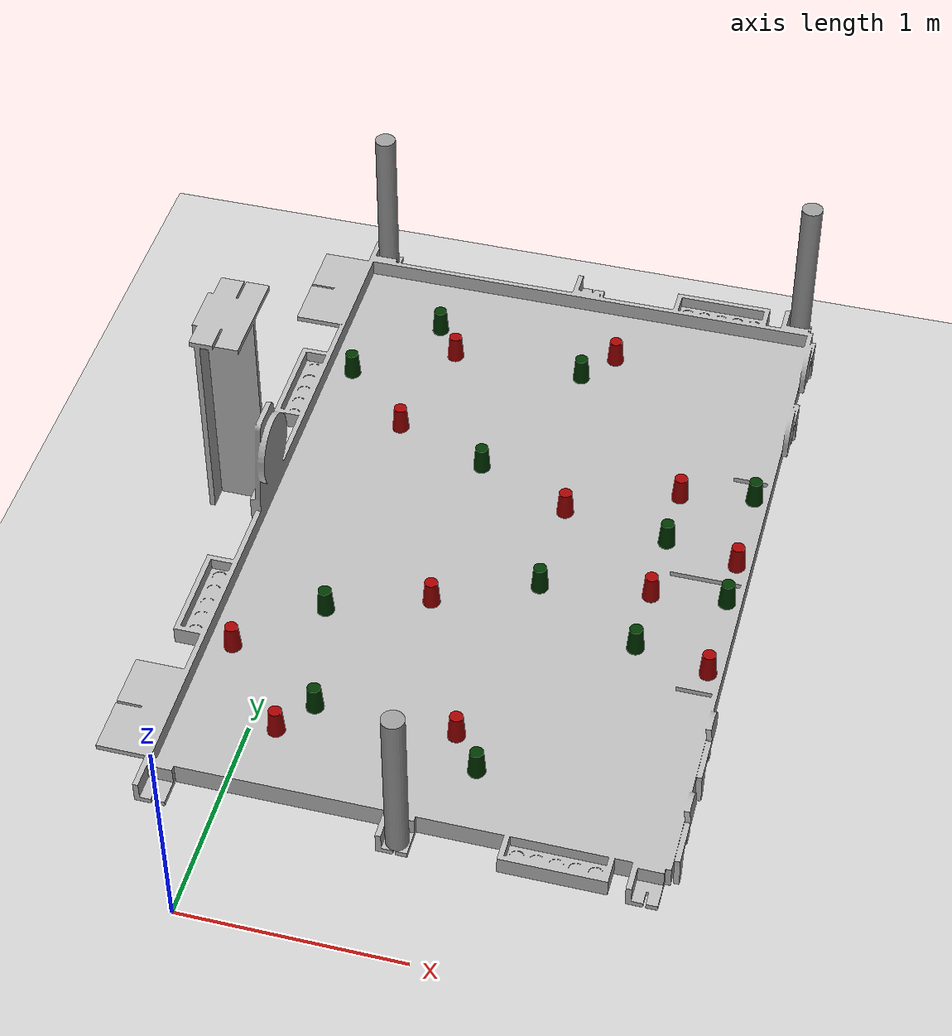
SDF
<sdf version="1.6">
 <world name="default">
  <light name="sun" type="directional">
   <pose>0 0 10 0 -0 0</pose>
   <diffuse>0.8 0.8 0.8 1</diffuse>
   <specular>0.2 0.2 0.2 1</specular>
   <attenuation>
    <range>1000</range>
    <constant>0.9</constant>
    <linear>0.01</linear>
    <quadratic>0.001</quadratic>
   </attenuation>
   <direction>-0.5 0.1 -0.9</direction>
  </light>
  <model name="ground_plane">
   <static>1</static>
   <link name="link">
    <collision name="collision">
     <geometry><plane><normal>0 0 1</normal><size>100 100</size></plane></geometry>
     <surface><friction><ode><mu>100</mu><mu2>50</mu2></ode></friction></surface>
    </collision>
    <visual name="visual">
     <cast_shadows>0</cast_shadows>
     <geometry><plane><normal>0 0 1</normal><size>100 100</size></plane></geometry>
     <material>
      <script><uri>file://media/materials/scripts/gazebo.material</uri><name>Gazebo/Grey</name></script>
     </material>
    </visual>
   </link>
  </model>
  <gravity>0 0 -9.8</gravity>
  <magnetic_field>6e-06 2.3e-05 -4.2e-05</magnetic_field>
  <atmosphere type="adiabatic"/>
  <physics name="default_physics" default="0" type="ode">
   <max_step_size>0.001</max_step_size>
   <real_time_factor>1</real_time_factor>
   <real_time_update_rate>1000</real_time_update_rate>
  </physics>
  <scene><ambient>0.4 0.4 0.4 1</ambient><background>0.7 0.7 0.7 1</background><shadows>1</shadows></scene>
  <audio><device>default</device></audio>
  <spherical_coordinates>
   <surface_model>EARTH_WGS84</surface_model>
   <latitude_deg>0</latitude_deg>
   <longitude_deg>0</longitude_deg>
   <elevation>0</elevation>
   <heading_deg>0</heading_deg>
  </spherical_coordinates>
  <model name="table_eurobot_2020">
   <pose>1 1.5 0 0 -0 1.5708</pose>
   <static>1</static>
   <link name="table">
    <inertial>
     <mass>15</mass>
     <inertia><ixx>0.083</ixx><ixy>0</ixy><ixz>0</ixz><iyy>0.083</iyy><iyz>0</iyz><izz>0.083</izz></inertia>
    </inertial>
    <collision name="table_collision">
     <pose>-1.5 1 0.9 1.57 -0 0</pose>
     <geometry><mesh><uri>model://table_eurobot_2020/meshes/table.dae</uri><scale>1 1 1</scale></mesh></geometry>
    </collision>
    <visual name="table_visual">
     <pose>-1.5 1 0.9 1.57 -0 0</pose>
     <geometry>
      <mesh><uri>model://table_eurobot_2020/meshes/table_tex2.dae</uri><scale>1 1 1</scale></mesh>
     </geometry>
    </visual>
    <collision name="table_stand_collision">
     <pose>0 0 0.45 0 -0 0</pose>
     <geometry><box><size>1 1 0.947</size></box></geometry>
    </collision>
    <visual name="table_stand_visual">
     <pose>0 0 0.45 0 -0 0</pose>
     <geometry><box><size>1 1 0.924</size></box></geometry>
    </visual>
   </link>
  </model>
  <light name="user_point_light_0" type="point">
   <pose>1.01102 1.44939 1 0 -0 0</pose>
   <diffuse>0.5 0.5 0.5 1</diffuse>
   <specular>0.1 0.1 0.1 1</specular>
   <attenuation>
    <range>20</range>
    <constant>0.5</constant>
    <linear>0.01</linear>
    <quadratic>0.001</quadratic>
   </attenuation>
   <cast_shadows>0</cast_shadows>
   <direction>0 0 -1</direction>
  </light>
  <model name="balise_green_1">
   <link name="balise">
    <inertial>
     <mass>0.0316</mass>
     <inertia><ixx>0.083</ixx><ixy>0</ixy><ixz>0</ixz><iyy>0.083</iyy><iyz>0</iyz><izz>0.083</izz></inertia>
    </inertial>
    <visual name="balise_visual">
     <pose>0 0 0.06 0 -0 0</pose>
     <geometry><mesh><uri>model://balise_green/meshes/balise_green.dae</uri><scale>1 1 1</scale></mesh></geometry>
    </visual>
    <collision name="balise_collision">
     <pose>0 0 0.06 0 -0 0</pose>
     <geometry>
      <mesh><uri>/home/frank/.gazebo/models/balise_green/meshes/balise_green.dae</uri><scale>1 1 1</scale></mesh>
     </geometry>
     <surface>
      <friction>
       <ode><mu>1</mu><mu2>1</mu2><fdir1>0 0 0</fdir1><slip1>0</slip1><slip2>0</slip2></ode>
       <torsional>
        <coefficient>1</coefficient>
        <patch_radius>0</patch_radius>
        <surface_radius>0</surface_radius>
        <use_patch_radius>1</use_patch_radius>
        <ode><slip>0</slip></ode>
       </torsional>
      </friction>
      <bounce><restitution_coefficient>0</restitution_coefficient><threshold>1e+06</threshold></bounce>
      <contact>
       <collide_without_contact>0</collide_without_contact>
       <collide_without_contact_bitmask>1</collide_without_contact_bitmask>
       <collide_bitmask>1</collide_bitmask>
       <ode>
        <soft_cfm>0</soft_cfm>
        <soft_erp>0.2</soft_erp>
        <kp>1e+13</kp>
        <kd>1</kd>
        <max_vel>0.01</max_vel>
        <min_depth>0</min_depth>
       </ode>
       <bullet>
        <split_impulse>1</split_impulse>
        <split_impulse_penetration_threshold>-0.01</split_impulse_penetration_threshold>
        <soft_cfm>0</soft_cfm>
        <soft_erp>0.2</soft_erp>
        <kp>1e+13</kp>
        <kd>1</kd>
       </bullet>
      </contact>
     </surface>
    </collision>
   </link>
   <static>0</static>
   <pose>0.099919 2.33004 1.0396 -3.14129 0.001341 3.14159</pose>
  </model>
  <model name="balise_green_2">
   <link name="balise">
    <inertial>
     <mass>0.0316</mass>
     <inertia><ixx>0.083</ixx><ixy>0</ixy><ixz>0</ixz><iyy>0.083</iyy><iyz>0</iyz><izz>0.083</izz></inertia>
    </inertial>
    <visual name="balise_visual">
     <pose>0 0 0.06 0 -0 0</pose>
     <geometry><mesh><uri>model://balise_green/meshes/balise_green.dae</uri><scale>1 1 1</scale></mesh></geometry>
    </visual>
    <collision name="balise_collision">
     <pose>0 0 0.06 0 -0 0</pose>
     <geometry>
      <mesh><uri>/home/frank/.gazebo/models/balise_green/meshes/balise_green.dae</uri><scale>1 1 1</scale></mesh>
     </geometry>
     <surface>
      <friction>
       <ode><mu>1</mu><mu2>1</mu2><fdir1>0 0 0</fdir1><slip1>0</slip1><slip2>0</slip2></ode>
       <torsional>
        <coefficient>1</coefficient>
        <patch_radius>0</patch_radius>
        <surface_radius>0</surface_radius>
        <use_patch_radius>1</use_patch_radius>
        <ode><slip>0</slip></ode>
       </torsional>
      </friction>
      <bounce><restitution_coefficient>0</restitution_coefficient><threshold>1e+06</threshold></bounce>
      <contact>
       <collide_without_contact>0</collide_without_contact>
       <collide_without_contact_bitmask>1</collide_without_contact_bitmask>
       <collide_bitmask>1</collide_bitmask>
       <ode>
        <soft_cfm>0</soft_cfm>
        <soft_erp>0.2</soft_erp>
        <kp>1e+13</kp>
        <kd>1</kd>
        <max_vel>0.01</max_vel>
        <min_depth>0</min_depth>
       </ode>
       <bullet>
        <split_impulse>1</split_impulse>
        <split_impulse_penetration_threshold>-0.01</split_impulse_penetration_threshold>
        <soft_cfm>0</soft_cfm>
        <soft_erp>0.2</soft_erp>
        <kp>1e+13</kp>
        <kd>1</kd>
       </bullet>
      </contact>
     </surface>
    </collision>
   </link>
   <static>0</static>
   <pose>0.399998 0.949986 1.03981 3.14148 0.000669 -3.14159</pose>
  </model>
  <model name="balise_green_3">
   <link name="balise">
    <inertial>
     <mass>0.0316</mass>
     <inertia><ixx>0.083</ixx><ixy>0</ixy><ixz>0</ixz><iyy>0.083</iyy><iyz>0</iyz><izz>0.083</izz></inertia>
    </inertial>
    <visual name="balise_visual">
     <pose>0 0 0.06 0 -0 0</pose>
     <geometry><mesh><uri>model://balise_green/meshes/balise_green.dae</uri><scale>1 1 1</scale></mesh></geometry>
    </visual>
    <collision name="balise_collision">
     <pose>0 0 0.06 0 -0 0</pose>
     <geometry>
      <mesh><uri>/home/frank/.gazebo/models/balise_green/meshes/balise_green.dae</uri><scale>1 1 1</scale></mesh>
     </geometry>
     <surface>
      <friction>
       <ode><mu>1</mu><mu2>1</mu2><fdir1>0 0 0</fdir1><slip1>0</slip1><slip2>0</slip2></ode>
       <torsional>
        <coefficient>1</coefficient>
        <patch_radius>0</patch_radius>
        <surface_radius>0</surface_radius>
        <use_patch_radius>1</use_patch_radius>
        <ode><slip>0</slip></ode>
       </torsional>
      </friction>
      <bounce><restitution_coefficient>0</restitution_coefficient><threshold>1e+06</threshold></bounce>
      <contact>
       <collide_without_contact>0</collide_without_contact>
       <collide_without_contact_bitmask>1</collide_without_contact_bitmask>
       <collide_bitmask>1</collide_bitmask>
       <ode>
        <soft_cfm>0</soft_cfm>
        <soft_erp>0.2</soft_erp>
        <kp>1e+13</kp>
        <kd>1</kd>
        <max_vel>0.01</max_vel>
        <min_depth>0</min_depth>
       </ode>
       <bullet>
        <split_impulse>1</split_impulse>
        <split_impulse_penetration_threshold>-0.01</split_impulse_penetration_threshold>
        <soft_cfm>0</soft_cfm>
        <soft_erp>0.2</soft_erp>
        <kp>1e+13</kp>
        <kd>1</kd>
       </bullet>
      </contact>
     </surface>
    </collision>
   </link>
   <static>0</static>
   <pose>0.400062 2.69994 1.03985 3.14104 0.000131 -3.14159</pose>
  </model>
  <model name="balise_green_4">
   <link name="balise">
    <inertial>
     <mass>0.0316</mass>
     <inertia><ixx>0.083</ixx><ixy>0</ixy><ixz>0</ixz><iyy>0.083</iyy><iyz>0</iyz><izz>0.083</izz></inertia>
    </inertial>
    <visual name="balise_visual">
     <pose>0 0 0.06 0 -0 0</pose>
     <geometry><mesh><uri>model://balise_green/meshes/balise_green.dae</uri><scale>1 1 1</scale></mesh></geometry>
    </visual>
    <collision name="balise_collision">
     <pose>0 0 0.06 0 -0 0</pose>
     <geometry>
      <mesh><uri>/home/frank/.gazebo/models/balise_green/meshes/balise_green.dae</uri><scale>1 1 1</scale></mesh>
     </geometry>
     <surface>
      <friction>
       <ode><mu>1</mu><mu2>1</mu2><fdir1>0 0 0</fdir1><slip1>0</slip1><slip2>0</slip2></ode>
       <torsional>
        <coefficient>1</coefficient>
        <patch_radius>0</patch_radius>
        <surface_radius>0</surface_radius>
        <use_patch_radius>1</use_patch_radius>
        <ode><slip>0</slip></ode>
       </torsional>
      </friction>
      <bounce><restitution_coefficient>0</restitution_coefficient><threshold>1e+06</threshold></bounce>
      <contact>
       <collide_without_contact>0</collide_without_contact>
       <collide_without_contact_bitmask>1</collide_without_contact_bitmask>
       <collide_bitmask>1</collide_bitmask>
       <ode>
        <soft_cfm>0</soft_cfm>
        <soft_erp>0.2</soft_erp>
        <kp>1e+13</kp>
        <kd>1</kd>
        <max_vel>0.01</max_vel>
        <min_depth>0</min_depth>
       </ode>
       <bullet>
        <split_impulse>1</split_impulse>
        <split_impulse_penetration_threshold>-0.01</split_impulse_penetration_threshold>
        <soft_cfm>0</soft_cfm>
        <soft_erp>0.2</soft_erp>
        <kp>1e+13</kp>
        <kd>1</kd>
       </bullet>
      </contact>
     </surface>
    </collision>
   </link>
   <static>0</static>
   <pose>0.509997 0.450009 1.03991 -3.14152 0.00069 3.14159</pose>
  </model>
  <model name="balise_green_5">
   <link name="balise">
    <inertial>
     <mass>0.0316</mass>
     <inertia><ixx>0.083</ixx><ixy>0</ixy><ixz>0</ixz><iyy>0.083</iyy><iyz>0</iyz><izz>0.083</izz></inertia>
    </inertial>
    <visual name="balise_visual">
     <pose>0 0 0.06 0 -0 0</pose>
     <geometry><mesh><uri>model://balise_green/meshes/balise_green.dae</uri><scale>1 1 1</scale></mesh></geometry>
    </visual>
    <collision name="balise_collision">
     <pose>0 0 0.06 0 -0 0</pose>
     <geometry>
      <mesh><uri>/home/frank/.gazebo/models/balise_green/meshes/balise_green.dae</uri><scale>1 1 1</scale></mesh>
     </geometry>
     <surface>
      <friction>
       <ode><mu>1</mu><mu2>1</mu2><fdir1>0 0 0</fdir1><slip1>0</slip1><slip2>0</slip2></ode>
       <torsional>
        <coefficient>1</coefficient>
        <patch_radius>0</patch_radius>
        <surface_radius>0</surface_radius>
        <use_patch_radius>1</use_patch_radius>
        <ode><slip>0</slip></ode>
       </torsional>
      </friction>
      <bounce><restitution_coefficient>0</restitution_coefficient><threshold>1e+06</threshold></bounce>
      <contact>
       <collide_without_contact>0</collide_without_contact>
       <collide_without_contact_bitmask>1</collide_without_contact_bitmask>
       <collide_bitmask>1</collide_bitmask>
       <ode>
        <soft_cfm>0</soft_cfm>
        <soft_erp>0.2</soft_erp>
        <kp>1e+13</kp>
        <kd>1</kd>
        <max_vel>0.01</max_vel>
        <min_depth>0</min_depth>
       </ode>
       <bullet>
        <split_impulse>1</split_impulse>
        <split_impulse_penetration_threshold>-0.01</split_impulse_penetration_threshold>
        <soft_cfm>0</soft_cfm>
        <soft_erp>0.2</soft_erp>
        <kp>1e+13</kp>
        <kd>1</kd>
       </bullet>
      </contact>
     </surface>
    </collision>
   </link>
   <static>0</static>
   <pose>0.800114 1.90021 1.04106 -3.13984 -0.000177 3.14159</pose>
  </model>
  <model name="balise_green_6">
   <link name="balise">
    <inertial>
     <mass>0.0316</mass>
     <inertia><ixx>0.083</ixx><ixy>0</ixy><ixz>0</ixz><iyy>0.083</iyy><iyz>0</iyz><izz>0.083</izz></inertia>
    </inertial>
    <visual name="balise_visual">
     <pose>0 0 0.06 0 -0 0</pose>
     <geometry><mesh><uri>model://balise_green/meshes/balise_green.dae</uri><scale>1 1 1</scale></mesh></geometry>
    </visual>
    <collision name="balise_collision">
     <pose>0 0 0.06 0 -0 0</pose>
     <geometry>
      <mesh><uri>/home/frank/.gazebo/models/balise_green/meshes/balise_green.dae</uri><scale>1 1 1</scale></mesh>
     </geometry>
     <surface>
      <friction>
       <ode><mu>1</mu><mu2>1</mu2><fdir1>0 0 0</fdir1><slip1>0</slip1><slip2>0</slip2></ode>
       <torsional>
        <coefficient>1</coefficient>
        <patch_radius>0</patch_radius>
        <surface_radius>0</surface_radius>
        <use_patch_radius>1</use_patch_radius>
        <ode><slip>0</slip></ode>
       </torsional>
      </friction>
      <bounce><restitution_coefficient>0</restitution_coefficient><threshold>1e+06</threshold></bounce>
      <contact>
       <collide_without_contact>0</collide_without_contact>
       <collide_without_contact_bitmask>1</collide_without_contact_bitmask>
       <collide_bitmask>1</collide_bitmask>
       <ode>
        <soft_cfm>0</soft_cfm>
        <soft_erp>0.2</soft_erp>
        <kp>1e+13</kp>
        <kd>1</kd>
        <max_vel>0.01</max_vel>
        <min_depth>0</min_depth>
       </ode>
       <bullet>
        <split_impulse>1</split_impulse>
        <split_impulse_penetration_threshold>-0.01</split_impulse_penetration_threshold>
        <soft_cfm>0</soft_cfm>
        <soft_erp>0.2</soft_erp>
        <kp>1e+13</kp>
        <kd>1</kd>
       </bullet>
      </contact>
     </surface>
    </collision>
   </link>
   <static>0</static>
   <pose>1.0799 2.54997 1.04039 3.14138 0.001511 -3.14158</pose>
  </model>
  <model name="balise_green_7">
   <link name="balise">
    <inertial>
     <mass>0.0316</mass>
     <inertia><ixx>0.083</ixx><ixy>0</ixy><ixz>0</ixz><iyy>0.083</iyy><iyz>0</iyz><izz>0.083</izz></inertia>
    </inertial>
    <visual name="balise_visual">
     <pose>0 0 0.06 0 -0 0</pose>
     <geometry><mesh><uri>model://balise_green/meshes/balise_green.dae</uri><scale>1 1 1</scale></mesh></geometry>
    </visual>
    <collision name="balise_collision">
     <pose>0 0 0.06 0 -0 0</pose>
     <geometry>
      <mesh><uri>/home/frank/.gazebo/models/balise_green/meshes/balise_green.dae</uri><scale>1 1 1</scale></mesh>
     </geometry>
     <surface>
      <friction>
       <ode><mu>1</mu><mu2>1</mu2><fdir1>0 0 0</fdir1><slip1>0</slip1><slip2>0</slip2></ode>
       <torsional>
        <coefficient>1</coefficient>
        <patch_radius>0</patch_radius>
        <surface_radius>0</surface_radius>
        <use_patch_radius>1</use_patch_radius>
        <ode><slip>0</slip></ode>
       </torsional>
      </friction>
      <bounce><restitution_coefficient>0</restitution_coefficient><threshold>1e+06</threshold></bounce>
      <contact>
       <collide_without_contact>0</collide_without_contact>
       <collide_without_contact_bitmask>1</collide_without_contact_bitmask>
       <collide_bitmask>1</collide_bitmask>
       <ode>
        <soft_cfm>0</soft_cfm>
        <soft_erp>0.2</soft_erp>
        <kp>1e+13</kp>
        <kd>1</kd>
        <max_vel>0.01</max_vel>
        <min_depth>0</min_depth>
       </ode>
       <bullet>
        <split_impulse>1</split_impulse>
        <split_impulse_penetration_threshold>-0.01</split_impulse_penetration_threshold>
        <soft_cfm>0</soft_cfm>
        <soft_erp>0.2</soft_erp>
        <kp>1e+13</kp>
        <kd>1</kd>
       </bullet>
      </contact>
     </surface>
    </collision>
   </link>
   <static>0</static>
   <pose>1.20007 0.299931 1.04049 3.141 5.5e-05 -3.14158</pose>
  </model>
  <model name="balise_green_8">
   <link name="balise">
    <inertial>
     <mass>0.0316</mass>
     <inertia><ixx>0.083</ixx><ixy>0</ixy><ixz>0</ixz><iyy>0.083</iyy><iyz>0</iyz><izz>0.083</izz></inertia>
    </inertial>
    <visual name="balise_visual">
     <pose>0 0 0.06 0 -0 0</pose>
     <geometry><mesh><uri>model://balise_green/meshes/balise_green.dae</uri><scale>1 1 1</scale></mesh></geometry>
    </visual>
    <collision name="balise_collision">
     <pose>0 0 0.06 0 -0 0</pose>
     <geometry>
      <mesh><uri>/home/frank/.gazebo/models/balise_green/meshes/balise_green.dae</uri><scale>1 1 1</scale></mesh>
     </geometry>
     <surface>
      <friction>
       <ode><mu>1</mu><mu2>1</mu2><fdir1>0 0 0</fdir1><slip1>0</slip1><slip2>0</slip2></ode>
       <torsional>
        <coefficient>1</coefficient>
        <patch_radius>0</patch_radius>
        <surface_radius>0</surface_radius>
        <use_patch_radius>1</use_patch_radius>
        <ode><slip>0</slip></ode>
       </torsional>
      </friction>
      <bounce><restitution_coefficient>0</restitution_coefficient><threshold>1e+06</threshold></bounce>
      <contact>
       <collide_without_contact>0</collide_without_contact>
       <collide_without_contact_bitmask>1</collide_without_contact_bitmask>
       <collide_bitmask>1</collide_bitmask>
       <ode>
        <soft_cfm>0</soft_cfm>
        <soft_erp>0.2</soft_erp>
        <kp>1e+13</kp>
        <kd>1</kd>
        <max_vel>0.01</max_vel>
        <min_depth>0</min_depth>
       </ode>
       <bullet>
        <split_impulse>1</split_impulse>
        <split_impulse_penetration_threshold>-0.01</split_impulse_penetration_threshold>
        <soft_cfm>0</soft_cfm>
        <soft_erp>0.2</soft_erp>
        <kp>1e+13</kp>
        <kd>1</kd>
       </bullet>
      </contact>
     </surface>
    </collision>
   </link>
   <static>0</static>
   <pose>1.2041 1.28875 1.04103 -3.14084 -8.1e-05 3.14159</pose>
  </model>
  <model name="balise_green_9">
   <link name="balise">
    <inertial>
     <mass>0.0316</mass>
     <inertia><ixx>0.083</ixx><ixy>0</ixy><ixz>0</ixz><iyy>0.083</iyy><iyz>0</iyz><izz>0.083</izz></inertia>
    </inertial>
    <visual name="balise_visual">
     <pose>0 0 0.06 0 -0 0</pose>
     <geometry><mesh><uri>model://balise_green/meshes/balise_green.dae</uri><scale>1 1 1</scale></mesh></geometry>
    </visual>
    <collision name="balise_collision">
     <pose>0 0 0.06 0 -0 0</pose>
     <geometry>
      <mesh><uri>/home/frank/.gazebo/models/balise_green/meshes/balise_green.dae</uri><scale>1 1 1</scale></mesh>
     </geometry>
     <surface>
      <friction>
       <ode><mu>1</mu><mu2>1</mu2><fdir1>0 0 0</fdir1><slip1>0</slip1><slip2>0</slip2></ode>
       <torsional>
        <coefficient>1</coefficient>
        <patch_radius>0</patch_radius>
        <surface_radius>0</surface_radius>
        <use_patch_radius>1</use_patch_radius>
        <ode><slip>0</slip></ode>
       </torsional>
      </friction>
      <bounce><restitution_coefficient>0</restitution_coefficient><threshold>1e+06</threshold></bounce>
      <contact>
       <collide_without_contact>0</collide_without_contact>
       <collide_without_contact_bitmask>1</collide_without_contact_bitmask>
       <collide_bitmask>1</collide_bitmask>
       <ode>
        <soft_cfm>0</soft_cfm>
        <soft_erp>0.2</soft_erp>
        <kp>1e+13</kp>
        <kd>1</kd>
        <max_vel>0.01</max_vel>
        <min_depth>0</min_depth>
       </ode>
       <bullet>
        <split_impulse>1</split_impulse>
        <split_impulse_penetration_threshold>-0.01</split_impulse_penetration_threshold>
        <soft_cfm>0</soft_cfm>
        <soft_erp>0.2</soft_erp>
        <kp>1e+13</kp>
        <kd>1</kd>
       </bullet>
      </contact>
     </surface>
    </collision>
   </link>
   <static>0</static>
   <pose>1.64999 1.06488 1.04085 3.14055 0.000739 -3.14157</pose>
  </model>
  <model name="balise_green_10">
   <link name="balise">
    <inertial>
     <mass>0.0316</mass>
     <inertia><ixx>0.083</ixx><ixy>0</ixy><ixz>0</ixz><iyy>0.083</iyy><iyz>0</iyz><izz>0.083</izz></inertia>
    </inertial>
    <visual name="balise_visual">
     <pose>0 0 0.06 0 -0 0</pose>
     <geometry><mesh><uri>model://balise_green/meshes/balise_green.dae</uri><scale>1 1 1</scale></mesh></geometry>
    </visual>
    <collision name="balise_collision">
     <pose>0 0 0.06 0 -0 0</pose>
     <geometry>
      <mesh><uri>/home/frank/.gazebo/models/balise_green/meshes/balise_green.dae</uri><scale>1 1 1</scale></mesh>
     </geometry>
     <surface>
      <friction>
       <ode><mu>1</mu><mu2>1</mu2><fdir1>0 0 0</fdir1><slip1>0</slip1><slip2>0</slip2></ode>
       <torsional>
        <coefficient>1</coefficient>
        <patch_radius>0</patch_radius>
        <surface_radius>0</surface_radius>
        <use_patch_radius>1</use_patch_radius>
        <ode><slip>0</slip></ode>
       </torsional>
      </friction>
      <bounce><restitution_coefficient>0</restitution_coefficient><threshold>1e+06</threshold></bounce>
      <contact>
       <collide_without_contact>0</collide_without_contact>
       <collide_without_contact_bitmask>1</collide_without_contact_bitmask>
       <collide_bitmask>1</collide_bitmask>
       <ode>
        <soft_cfm>0</soft_cfm>
        <soft_erp>0.2</soft_erp>
        <kp>1e+13</kp>
        <kd>1</kd>
        <max_vel>0.01</max_vel>
        <min_depth>0</min_depth>
       </ode>
       <bullet>
        <split_impulse>1</split_impulse>
        <split_impulse_penetration_threshold>-0.01</split_impulse_penetration_threshold>
        <soft_cfm>0</soft_cfm>
        <soft_erp>0.2</soft_erp>
        <kp>1e+13</kp>
        <kd>1</kd>
       </bullet>
      </contact>
     </surface>
    </collision>
   </link>
   <static>0</static>
   <pose>1.64999 1.66489 1.04083 3.14073 0.000728 -3.14157</pose>
  </model>
  <model name="balise_green_11">
   <link name="balise">
    <inertial>
     <mass>0.0316</mass>
     <inertia><ixx>0.083</ixx><ixy>0</ixy><ixz>0</ixz><iyy>0.083</iyy><iyz>0</iyz><izz>0.083</izz></inertia>
    </inertial>
    <visual name="balise_visual">
     <pose>0 0 0.06 0 -0 0</pose>
     <geometry><mesh><uri>model://balise_green/meshes/balise_green.dae</uri><scale>1 1 1</scale></mesh></geometry>
    </visual>
    <collision name="balise_collision">
     <pose>0 0 0.06 0 -0 0</pose>
     <geometry>
      <mesh><uri>/home/frank/.gazebo/models/balise_green/meshes/balise_green.dae</uri><scale>1 1 1</scale></mesh>
     </geometry>
     <surface>
      <friction>
       <ode><mu>1</mu><mu2>1</mu2><fdir1>0 0 0</fdir1><slip1>0</slip1><slip2>0</slip2></ode>
       <torsional>
        <coefficient>1</coefficient>
        <patch_radius>0</patch_radius>
        <surface_radius>0</surface_radius>
        <use_patch_radius>1</use_patch_radius>
        <ode><slip>0</slip></ode>
       </torsional>
      </friction>
      <bounce><restitution_coefficient>0</restitution_coefficient><threshold>1e+06</threshold></bounce>
      <contact>
       <collide_without_contact>0</collide_without_contact>
       <collide_without_contact_bitmask>1</collide_without_contact_bitmask>
       <collide_bitmask>1</collide_bitmask>
       <ode>
        <soft_cfm>0</soft_cfm>
        <soft_erp>0.2</soft_erp>
        <kp>1e+13</kp>
        <kd>1</kd>
        <max_vel>0.01</max_vel>
        <min_depth>0</min_depth>
       </ode>
       <bullet>
        <split_impulse>1</split_impulse>
        <split_impulse_penetration_threshold>-0.01</split_impulse_penetration_threshold>
        <soft_cfm>0</soft_cfm>
        <soft_erp>0.2</soft_erp>
        <kp>1e+13</kp>
        <kd>1</kd>
       </bullet>
      </contact>
     </surface>
    </collision>
   </link>
   <static>0</static>
   <pose>1.95491 1.39501 1.04107 -3.14147 0.001443 3.14159</pose>
  </model>
  <model name="balise_green_12">
   <link name="balise">
    <inertial>
     <mass>0.0316</mass>
     <inertia><ixx>0.083</ixx><ixy>0</ixy><ixz>0</ixz><iyy>0.083</iyy><iyz>0</iyz><izz>0.083</izz></inertia>
    </inertial>
    <visual name="balise_visual">
     <pose>0 0 0.06 0 -0 0</pose>
     <geometry><mesh><uri>model://balise_green/meshes/balise_green.dae</uri><scale>1 1 1</scale></mesh></geometry>
    </visual>
    <collision name="balise_collision">
     <pose>0 0 0.06 0 -0 0</pose>
     <geometry>
      <mesh><uri>/home/frank/.gazebo/models/balise_green/meshes/balise_green.dae</uri><scale>1 1 1</scale></mesh>
     </geometry>
     <surface>
      <friction>
       <ode><mu>1</mu><mu2>1</mu2><fdir1>0 0 0</fdir1><slip1>0</slip1><slip2>0</slip2></ode>
       <torsional>
        <coefficient>1</coefficient>
        <patch_radius>0</patch_radius>
        <surface_radius>0</surface_radius>
        <use_patch_radius>1</use_patch_radius>
        <ode><slip>0</slip></ode>
       </torsional>
      </friction>
      <bounce><restitution_coefficient>0</restitution_coefficient><threshold>1e+06</threshold></bounce>
      <contact>
       <collide_without_contact>0</collide_without_contact>
       <collide_without_contact_bitmask>1</collide_without_contact_bitmask>
       <collide_bitmask>1</collide_bitmask>
       <ode>
        <soft_cfm>0</soft_cfm>
        <soft_erp>0.2</soft_erp>
        <kp>1e+13</kp>
        <kd>1</kd>
        <max_vel>0.01</max_vel>
        <min_depth>0</min_depth>
       </ode>
       <bullet>
        <split_impulse>1</split_impulse>
        <split_impulse_penetration_threshold>-0.01</split_impulse_penetration_threshold>
        <soft_cfm>0</soft_cfm>
        <soft_erp>0.2</soft_erp>
        <kp>1e+13</kp>
        <kd>1</kd>
       </bullet>
      </contact>
     </surface>
    </collision>
   </link>
   <static>0</static>
   <pose>1.95504 1.99497 1.04108 3.14134 0.000317 -3.14158</pose>
  </model>
  <model name="balise_red_1">
   <link name="balise">
    <inertial>
     <mass>0.0316</mass>
     <inertia><ixx>0.083</ixx><ixy>0</ixy><ixz>0</ixz><iyy>0.083</iyy><iyz>0</iyz><izz>0.083</izz></inertia>
    </inertial>
    <visual name="balise_visual">
     <pose>0 0 0.06 0 -0 0</pose>
     <geometry><mesh><uri>model://balise_red/meshes/balise_red.dae</uri><scale>1 1 1</scale></mesh></geometry>
    </visual>
    <collision name="balise_collision">
     <pose>0 0 0.06 0 -0 0</pose>
     <geometry>
      <mesh><uri>/home/frank/.gazebo/models/balise_red/meshes/balise_red.dae</uri><scale>1 1 1</scale></mesh>
     </geometry>
     <surface>
      <friction>
       <ode><mu>1</mu><mu2>1</mu2><fdir1>0 0 0</fdir1><slip1>0</slip1><slip2>0</slip2></ode>
       <torsional>
        <coefficient>1</coefficient>
        <patch_radius>0</patch_radius>
        <surface_radius>0</surface_radius>
        <use_patch_radius>1</use_patch_radius>
        <ode><slip>0</slip></ode>
       </torsional>
      </friction>
      <bounce><restitution_coefficient>0</restitution_coefficient><threshold>1e+06</threshold></bounce>
      <contact>
       <collide_without_contact>0</collide_without_contact>
       <collide_without_contact_bitmask>1</collide_without_contact_bitmask>
       <collide_bitmask>1</collide_bitmask>
       <ode>
        <soft_cfm>0</soft_cfm>
        <soft_erp>0.2</soft_erp>
        <kp>1e+13</kp>
        <kd>1</kd>
        <max_vel>0.01</max_vel>
        <min_depth>0</min_depth>
       </ode>
       <bullet>
        <split_impulse>1</split_impulse>
        <split_impulse_penetration_threshold>-0.01</split_impulse_penetration_threshold>
        <soft_cfm>0</soft_cfm>
        <soft_erp>0.2</soft_erp>
        <kp>1e+13</kp>
        <kd>1</kd>
       </bullet>
      </contact>
     </surface>
    </collision>
   </link>
   <static>0</static>
   <pose>0.100034 0.669956 1.0396 3.14122 0.000374 -3.14158</pose>
  </model>
  <model name="balise_red_2">
   <link name="balise">
    <inertial>
     <mass>0.0316</mass>
     <inertia><ixx>0.083</ixx><ixy>0</ixy><ixz>0</ixz><iyy>0.083</iyy><iyz>0</iyz><izz>0.083</izz></inertia>
    </inertial>
    <visual name="balise_visual">
     <pose>0 0 0.06 0 -0 0</pose>
     <geometry><mesh><uri>model://balise_red/meshes/balise_red.dae</uri><scale>1 1 1</scale></mesh></geometry>
    </visual>
    <collision name="balise_collision">
     <pose>0 0 0.06 0 -0 0</pose>
     <geometry>
      <mesh><uri>/home/frank/.gazebo/models/balise_red/meshes/balise_red.dae</uri><scale>1 1 1</scale></mesh>
     </geometry>
     <surface>
      <friction>
       <ode><mu>1</mu><mu2>1</mu2><fdir1>0 0 0</fdir1><slip1>0</slip1><slip2>0</slip2></ode>
       <torsional>
        <coefficient>1</coefficient>
        <patch_radius>0</patch_radius>
        <surface_radius>0</surface_radius>
        <use_patch_radius>1</use_patch_radius>
        <ode><slip>0</slip></ode>
       </torsional>
      </friction>
      <bounce><restitution_coefficient>0</restitution_coefficient><threshold>1e+06</threshold></bounce>
      <contact>
       <collide_without_contact>0</collide_without_contact>
       <collide_without_contact_bitmask>1</collide_without_contact_bitmask>
       <collide_bitmask>1</collide_bitmask>
       <ode>
        <soft_cfm>0</soft_cfm>
        <soft_erp>0.2</soft_erp>
        <kp>1e+13</kp>
        <kd>1</kd>
        <max_vel>0.01</max_vel>
        <min_depth>0</min_depth>
       </ode>
       <bullet>
        <split_impulse>1</split_impulse>
        <split_impulse_penetration_threshold>-0.01</split_impulse_penetration_threshold>
        <soft_cfm>0</soft_cfm>
        <soft_erp>0.2</soft_erp>
        <kp>1e+13</kp>
        <kd>1</kd>
       </bullet>
      </contact>
     </surface>
    </collision>
   </link>
   <static>0</static>
   <pose>0.400008 2.04998 1.03983 3.1414 0.00059 -3.14159</pose>
  </model>
  <model name="balise_red_3">
   <link name="balise">
    <inertial>
     <mass>0.0316</mass>
     <inertia><ixx>0.083</ixx><ixy>0</ixy><ixz>0</ixz><iyy>0.083</iyy><iyz>0</iyz><izz>0.083</izz></inertia>
    </inertial>
    <visual name="balise_visual">
     <pose>0 0 0.06 0 -0 0</pose>
     <geometry><mesh><uri>model://balise_red/meshes/balise_red.dae</uri><scale>1 1 1</scale></mesh></geometry>
    </visual>
    <collision name="balise_collision">
     <pose>0 0 0.06 0 -0 0</pose>
     <geometry>
      <mesh><uri>/home/frank/.gazebo/models/balise_red/meshes/balise_red.dae</uri><scale>1 1 1</scale></mesh>
     </geometry>
     <surface>
      <friction>
       <ode><mu>1</mu><mu2>1</mu2><fdir1>0 0 0</fdir1><slip1>0</slip1><slip2>0</slip2></ode>
       <torsional>
        <coefficient>1</coefficient>
        <patch_radius>0</patch_radius>
        <surface_radius>0</surface_radius>
        <use_patch_radius>1</use_patch_radius>
        <ode><slip>0</slip></ode>
       </torsional>
      </friction>
      <bounce><restitution_coefficient>0</restitution_coefficient><threshold>1e+06</threshold></bounce>
      <contact>
       <collide_without_contact>0</collide_without_contact>
       <collide_without_contact_bitmask>1</collide_without_contact_bitmask>
       <collide_bitmask>1</collide_bitmask>
       <ode>
        <soft_cfm>0</soft_cfm>
        <soft_erp>0.2</soft_erp>
        <kp>1e+13</kp>
        <kd>1</kd>
        <max_vel>0.01</max_vel>
        <min_depth>0</min_depth>
       </ode>
       <bullet>
        <split_impulse>1</split_impulse>
        <split_impulse_penetration_threshold>-0.01</split_impulse_penetration_threshold>
        <soft_cfm>0</soft_cfm>
        <soft_erp>0.2</soft_erp>
        <kp>1e+13</kp>
        <kd>1</kd>
       </bullet>
      </contact>
     </surface>
    </collision>
   </link>
   <static>0</static>
   <pose>0.399961 0.300021 1.03983 -3.14141 0.000997 -3.14159</pose>
  </model>
  <model name="balise_red_4">
   <link name="balise">
    <inertial>
     <mass>0.0316</mass>
     <inertia><ixx>0.083</ixx><ixy>0</ixy><ixz>0</ixz><iyy>0.083</iyy><iyz>0</iyz><izz>0.083</izz></inertia>
    </inertial>
    <visual name="balise_visual">
     <pose>0 0 0.06 0 -0 0</pose>
     <geometry><mesh><uri>model://balise_red/meshes/balise_red.dae</uri><scale>1 1 1</scale></mesh></geometry>
    </visual>
    <collision name="balise_collision">
     <pose>0 0 0.06 0 -0 0</pose>
     <geometry>
      <mesh><uri>/home/frank/.gazebo/models/balise_red/meshes/balise_red.dae</uri><scale>1 1 1</scale></mesh>
     </geometry>
     <surface>
      <friction>
       <ode><mu>1</mu><mu2>1</mu2><fdir1>0 0 0</fdir1><slip1>0</slip1><slip2>0</slip2></ode>
       <torsional>
        <coefficient>1</coefficient>
        <patch_radius>0</patch_radius>
        <surface_radius>0</surface_radius>
        <use_patch_radius>1</use_patch_radius>
        <ode><slip>0</slip></ode>
       </torsional>
      </friction>
      <bounce><restitution_coefficient>0</restitution_coefficient><threshold>1e+06</threshold></bounce>
      <contact>
       <collide_without_contact>0</collide_without_contact>
       <collide_without_contact_bitmask>1</collide_without_contact_bitmask>
       <collide_bitmask>1</collide_bitmask>
       <ode>
        <soft_cfm>0</soft_cfm>
        <soft_erp>0.2</soft_erp>
        <kp>1e+13</kp>
        <kd>1</kd>
        <max_vel>0.01</max_vel>
        <min_depth>0</min_depth>
       </ode>
       <bullet>
        <split_impulse>1</split_impulse>
        <split_impulse_penetration_threshold>-0.01</split_impulse_penetration_threshold>
        <soft_cfm>0</soft_cfm>
        <soft_erp>0.2</soft_erp>
        <kp>1e+13</kp>
        <kd>1</kd>
       </bullet>
      </contact>
     </surface>
    </collision>
   </link>
   <static>0</static>
   <pose>0.509984 2.55001 1.03991 -3.14155 0.000814 -3.14159</pose>
  </model>
  <model name="balise_red_5">
   <link name="balise">
    <inertial>
     <mass>0.0316</mass>
     <inertia><ixx>0.083</ixx><ixy>0</ixy><ixz>0</ixz><iyy>0.083</iyy><iyz>0</iyz><izz>0.083</izz></inertia>
    </inertial>
    <visual name="balise_visual">
     <pose>0 0 0.06 0 -0 0</pose>
     <geometry><mesh><uri>model://balise_red/meshes/balise_red.dae</uri><scale>1 1 1</scale></mesh></geometry>
    </visual>
    <collision name="balise_collision">
     <pose>0 0 0.06 0 -0 0</pose>
     <geometry>
      <mesh><uri>/home/frank/.gazebo/models/balise_red/meshes/balise_red.dae</uri><scale>1 1 1</scale></mesh>
     </geometry>
     <surface>
      <friction>
       <ode><mu>1</mu><mu2>1</mu2><fdir1>0 0 0</fdir1><slip1>0</slip1><slip2>0</slip2></ode>
       <torsional>
        <coefficient>1</coefficient>
        <patch_radius>0</patch_radius>
        <surface_radius>0</surface_radius>
        <use_patch_radius>1</use_patch_radius>
        <ode><slip>0</slip></ode>
       </torsional>
      </friction>
      <bounce><restitution_coefficient>0</restitution_coefficient><threshold>1e+06</threshold></bounce>
      <contact>
       <collide_without_contact>0</collide_without_contact>
       <collide_without_contact_bitmask>1</collide_without_contact_bitmask>
       <collide_bitmask>1</collide_bitmask>
       <ode>
        <soft_cfm>0</soft_cfm>
        <soft_erp>0.2</soft_erp>
        <kp>1e+13</kp>
        <kd>1</kd>
        <max_vel>0.01</max_vel>
        <min_depth>0</min_depth>
       </ode>
       <bullet>
        <split_impulse>1</split_impulse>
        <split_impulse_penetration_threshold>-0.01</split_impulse_penetration_threshold>
        <soft_cfm>0</soft_cfm>
        <soft_erp>0.2</soft_erp>
        <kp>1e+13</kp>
        <kd>1</kd>
       </bullet>
      </contact>
     </surface>
    </collision>
   </link>
   <static>0</static>
   <pose>0.800167 1.10016 1.04106 -3.14017 -0.000623 3.14159</pose>
  </model>
  <model name="balise_red_6">
   <link name="balise">
    <inertial>
     <mass>0.0316</mass>
     <inertia><ixx>0.083</ixx><ixy>0</ixy><ixz>0</ixz><iyy>0.083</iyy><iyz>0</iyz><izz>0.083</izz></inertia>
    </inertial>
    <visual name="balise_visual">
     <pose>0 0 0.06 0 -0 0</pose>
     <geometry><mesh><uri>model://balise_red/meshes/balise_red.dae</uri><scale>1 1 1</scale></mesh></geometry>
    </visual>
    <collision name="balise_collision">
     <pose>0 0 0.06 0 -0 0</pose>
     <geometry>
      <mesh><uri>/home/frank/.gazebo/models/balise_red/meshes/balise_red.dae</uri><scale>1 1 1</scale></mesh>
     </geometry>
     <surface>
      <friction>
       <ode><mu>1</mu><mu2>1</mu2><fdir1>0 0 0</fdir1><slip1>0</slip1><slip2>0</slip2></ode>
       <torsional>
        <coefficient>1</coefficient>
        <patch_radius>0</patch_radius>
        <surface_radius>0</surface_radius>
        <use_patch_radius>1</use_patch_radius>
        <ode><slip>0</slip></ode>
       </torsional>
      </friction>
      <bounce><restitution_coefficient>0</restitution_coefficient><threshold>1e+06</threshold></bounce>
      <contact>
       <collide_without_contact>0</collide_without_contact>
       <collide_without_contact_bitmask>1</collide_without_contact_bitmask>
       <collide_bitmask>1</collide_bitmask>
       <ode>
        <soft_cfm>0</soft_cfm>
        <soft_erp>0.2</soft_erp>
        <kp>1e+13</kp>
        <kd>1</kd>
        <max_vel>0.01</max_vel>
        <min_depth>0</min_depth>
       </ode>
       <bullet>
        <split_impulse>1</split_impulse>
        <split_impulse_penetration_threshold>-0.01</split_impulse_penetration_threshold>
        <soft_cfm>0</soft_cfm>
        <soft_erp>0.2</soft_erp>
        <kp>1e+13</kp>
        <kd>1</kd>
       </bullet>
      </contact>
     </surface>
    </collision>
   </link>
   <static>0</static>
   <pose>1.08004 0.449965 1.04038 3.1413 0.000266 3.14159</pose>
  </model>
  <model name="balise_red_7">
   <link name="balise">
    <inertial>
     <mass>0.0316</mass>
     <inertia><ixx>0.083</ixx><ixy>0</ixy><ixz>0</ixz><iyy>0.083</iyy><iyz>0</iyz><izz>0.083</izz></inertia>
    </inertial>
    <visual name="balise_visual">
     <pose>0 0 0.06 0 -0 0</pose>
     <geometry><mesh><uri>model://balise_red/meshes/balise_red.dae</uri><scale>1 1 1</scale></mesh></geometry>
    </visual>
    <collision name="balise_collision">
     <pose>0 0 0.06 0 -0 0</pose>
     <geometry>
      <mesh><uri>/home/frank/.gazebo/models/balise_red/meshes/balise_red.dae</uri><scale>1 1 1</scale></mesh>
     </geometry>
     <surface>
      <friction>
       <ode><mu>1</mu><mu2>1</mu2><fdir1>0 0 0</fdir1><slip1>0</slip1><slip2>0</slip2></ode>
       <torsional>
        <coefficient>1</coefficient>
        <patch_radius>0</patch_radius>
        <surface_radius>0</surface_radius>
        <use_patch_radius>1</use_patch_radius>
        <ode><slip>0</slip></ode>
       </torsional>
      </friction>
      <bounce><restitution_coefficient>0</restitution_coefficient><threshold>1e+06</threshold></bounce>
      <contact>
       <collide_without_contact>0</collide_without_contact>
       <collide_without_contact_bitmask>1</collide_without_contact_bitmask>
       <collide_bitmask>1</collide_bitmask>
       <ode>
        <soft_cfm>0</soft_cfm>
        <soft_erp>0.2</soft_erp>
        <kp>1e+13</kp>
        <kd>1</kd>
        <max_vel>0.01</max_vel>
        <min_depth>0</min_depth>
       </ode>
       <bullet>
        <split_impulse>1</split_impulse>
        <split_impulse_penetration_threshold>-0.01</split_impulse_penetration_threshold>
        <soft_cfm>0</soft_cfm>
        <soft_erp>0.2</soft_erp>
        <kp>1e+13</kp>
        <kd>1</kd>
       </bullet>
      </contact>
     </surface>
    </collision>
   </link>
   <static>0</static>
   <pose>1.2 2.6999 1.04048 3.14071 0.000684 -3.14159</pose>
  </model>
  <model name="balise_red_8">
   <link name="balise">
    <inertial>
     <mass>0.0316</mass>
     <inertia><ixx>0.083</ixx><ixy>0</ixy><ixz>0</ixz><iyy>0.083</iyy><iyz>0</iyz><izz>0.083</izz></inertia>
    </inertial>
    <visual name="balise_visual">
     <pose>0 0 0.06 0 -0 0</pose>
     <geometry><mesh><uri>model://balise_red/meshes/balise_red.dae</uri><scale>1 1 1</scale></mesh></geometry>
    </visual>
    <collision name="balise_collision">
     <pose>0 0 0.06 0 -0 0</pose>
     <geometry>
      <mesh><uri>/home/frank/.gazebo/models/balise_red/meshes/balise_red.dae</uri><scale>1 1 1</scale></mesh>
     </geometry>
     <surface>
      <friction>
       <ode><mu>1</mu><mu2>1</mu2><fdir1>0 0 0</fdir1><slip1>0</slip1><slip2>0</slip2></ode>
       <torsional>
        <coefficient>1</coefficient>
        <patch_radius>0</patch_radius>
        <surface_radius>0</surface_radius>
        <use_patch_radius>1</use_patch_radius>
        <ode><slip>0</slip></ode>
       </torsional>
      </friction>
      <bounce><restitution_coefficient>0</restitution_coefficient><threshold>1e+06</threshold></bounce>
      <contact>
       <collide_without_contact>0</collide_without_contact>
       <collide_without_contact_bitmask>1</collide_without_contact_bitmask>
       <collide_bitmask>1</collide_bitmask>
       <ode>
        <soft_cfm>0</soft_cfm>
        <soft_erp>0.2</soft_erp>
        <kp>1e+13</kp>
        <kd>1</kd>
        <max_vel>0.01</max_vel>
        <min_depth>0</min_depth>
       </ode>
       <bullet>
        <split_impulse>1</split_impulse>
        <split_impulse_penetration_threshold>-0.01</split_impulse_penetration_threshold>
        <soft_cfm>0</soft_cfm>
        <soft_erp>0.2</soft_erp>
        <kp>1e+13</kp>
        <kd>1</kd>
       </bullet>
      </contact>
     </surface>
    </collision>
   </link>
   <static>0</static>
   <pose>1.20408 1.73002 1.04099 -3.14147 1.8e-05 3.14159</pose>
  </model>
  <model name="balise_red_9">
   <link name="balise">
    <inertial>
     <mass>0.0316</mass>
     <inertia><ixx>0.083</ixx><ixy>0</ixy><ixz>0</ixz><iyy>0.083</iyy><iyz>0</iyz><izz>0.083</izz></inertia>
    </inertial>
    <visual name="balise_visual">
     <pose>0 0 0.06 0 -0 0</pose>
     <geometry><mesh><uri>model://balise_red/meshes/balise_red.dae</uri><scale>1 1 1</scale></mesh></geometry>
    </visual>
    <collision name="balise_collision">
     <pose>0 0 0.06 0 -0 0</pose>
     <geometry>
      <mesh><uri>/home/frank/.gazebo/models/balise_red/meshes/balise_red.dae</uri><scale>1 1 1</scale></mesh>
     </geometry>
     <surface>
      <friction>
       <ode><mu>1</mu><mu2>1</mu2><fdir1>0 0 0</fdir1><slip1>0</slip1><slip2>0</slip2></ode>
       <torsional>
        <coefficient>1</coefficient>
        <patch_radius>0</patch_radius>
        <surface_radius>0</surface_radius>
        <use_patch_radius>1</use_patch_radius>
        <ode><slip>0</slip></ode>
       </torsional>
      </friction>
      <bounce><restitution_coefficient>0</restitution_coefficient><threshold>1e+06</threshold></bounce>
      <contact>
       <collide_without_contact>0</collide_without_contact>
       <collide_without_contact_bitmask>1</collide_without_contact_bitmask>
       <collide_bitmask>1</collide_bitmask>
       <ode>
        <soft_cfm>0</soft_cfm>
        <soft_erp>0.2</soft_erp>
        <kp>1e+13</kp>
        <kd>1</kd>
        <max_vel>0.01</max_vel>
        <min_depth>0</min_depth>
       </ode>
       <bullet>
        <split_impulse>1</split_impulse>
        <split_impulse_penetration_threshold>-0.01</split_impulse_penetration_threshold>
        <soft_cfm>0</soft_cfm>
        <soft_erp>0.2</soft_erp>
        <kp>1e+13</kp>
        <kd>1</kd>
       </bullet>
      </contact>
     </surface>
    </collision>
   </link>
   <static>0</static>
   <pose>1.65007 1.93492 1.04085 3.14087 9.1e-05 -3.14158</pose>
  </model>
  <model name="balise_red_10">
   <link name="balise">
    <inertial>
     <mass>0.0316</mass>
     <inertia><ixx>0.083</ixx><ixy>0</ixy><ixz>0</ixz><iyy>0.083</iyy><iyz>0</iyz><izz>0.083</izz></inertia>
    </inertial>
    <visual name="balise_visual">
     <pose>0 0 0.06 0 -0 0</pose>
     <geometry><mesh><uri>model://balise_red/meshes/balise_red.dae</uri><scale>1 1 1</scale></mesh></geometry>
    </visual>
    <collision name="balise_collision">
     <pose>0 0 0.06 0 -0 0</pose>
     <geometry>
      <mesh><uri>/home/frank/.gazebo/models/balise_red/meshes/balise_red.dae</uri><scale>1 1 1</scale></mesh>
     </geometry>
     <surface>
      <friction>
       <ode><mu>1</mu><mu2>1</mu2><fdir1>0 0 0</fdir1><slip1>0</slip1><slip2>0</slip2></ode>
       <torsional>
        <coefficient>1</coefficient>
        <patch_radius>0</patch_radius>
        <surface_radius>0</surface_radius>
        <use_patch_radius>1</use_patch_radius>
        <ode><slip>0</slip></ode>
       </torsional>
      </friction>
      <bounce><restitution_coefficient>0</restitution_coefficient><threshold>1e+06</threshold></bounce>
      <contact>
       <collide_without_contact>0</collide_without_contact>
       <collide_without_contact_bitmask>1</collide_without_contact_bitmask>
       <collide_bitmask>1</collide_bitmask>
       <ode>
        <soft_cfm>0</soft_cfm>
        <soft_erp>0.2</soft_erp>
        <kp>1e+13</kp>
        <kd>1</kd>
        <max_vel>0.01</max_vel>
        <min_depth>0</min_depth>
       </ode>
       <bullet>
        <split_impulse>1</split_impulse>
        <split_impulse_penetration_threshold>-0.01</split_impulse_penetration_threshold>
        <soft_cfm>0</soft_cfm>
        <soft_erp>0.2</soft_erp>
        <kp>1e+13</kp>
        <kd>1</kd>
       </bullet>
      </contact>
     </surface>
    </collision>
   </link>
   <static>0</static>
   <pose>1.64996 1.35501 1.04082 -3.14155 0.000927 3.14159</pose>
  </model>
  <model name="balise_red_11">
   <link name="balise">
    <inertial>
     <mass>0.0316</mass>
     <inertia><ixx>0.083</ixx><ixy>0</ixy><ixz>0</ixz><iyy>0.083</iyy><iyz>0</iyz><izz>0.083</izz></inertia>
    </inertial>
    <visual name="balise_visual">
     <pose>0 0 0.06 0 -0 0</pose>
     <geometry><mesh><uri>model://balise_red/meshes/balise_red.dae</uri><scale>1 1 1</scale></mesh></geometry>
    </visual>
    <collision name="balise_collision">
     <pose>0 0 0.06 0 -0 0</pose>
     <geometry>
      <mesh><uri>/home/frank/.gazebo/models/balise_red/meshes/balise_red.dae</uri><scale>1 1 1</scale></mesh>
     </geometry>
     <surface>
      <friction>
       <ode><mu>1</mu><mu2>1</mu2><fdir1>0 0 0</fdir1><slip1>0</slip1><slip2>0</slip2></ode>
       <torsional>
        <coefficient>1</coefficient>
        <patch_radius>0</patch_radius>
        <surface_radius>0</surface_radius>
        <use_patch_radius>1</use_patch_radius>
        <ode><slip>0</slip></ode>
       </torsional>
      </friction>
      <bounce><restitution_coefficient>0</restitution_coefficient><threshold>1e+06</threshold></bounce>
      <contact>
       <collide_without_contact>0</collide_without_contact>
       <collide_without_contact_bitmask>1</collide_without_contact_bitmask>
       <collide_bitmask>1</collide_bitmask>
       <ode>
        <soft_cfm>0</soft_cfm>
        <soft_erp>0.2</soft_erp>
        <kp>1e+13</kp>
        <kd>1</kd>
        <max_vel>0.01</max_vel>
        <min_depth>0</min_depth>
       </ode>
       <bullet>
        <split_impulse>1</split_impulse>
        <split_impulse_penetration_threshold>-0.01</split_impulse_penetration_threshold>
        <soft_cfm>0</soft_cfm>
        <soft_erp>0.2</soft_erp>
        <kp>1e+13</kp>
        <kd>1</kd>
       </bullet>
      </contact>
     </surface>
    </collision>
   </link>
   <static>0</static>
   <pose>1.95506 1.60496 1.04107 3.14123 0.000121 3.14159</pose>
  </model>
  <model name="balise_red_12">
   <link name="balise">
    <inertial>
     <mass>0.0316</mass>
     <inertia><ixx>0.083</ixx><ixy>0</ixy><ixz>0</ixz><iyy>0.083</iyy><iyz>0</iyz><izz>0.083</izz></inertia>
    </inertial>
    <visual name="balise_visual">
     <pose>0 0 0.06 0 -0 0</pose>
     <geometry><mesh><uri>model://balise_red/meshes/balise_red.dae</uri><scale>1 1 1</scale></mesh></geometry>
    </visual>
    <collision name="balise_collision">
     <pose>0 0 0.06 0 -0 0</pose>
     <geometry>
      <mesh><uri>/home/frank/.gazebo/models/balise_red/meshes/balise_red.dae</uri><scale>1 1 1</scale></mesh>
     </geometry>
     <surface>
      <friction>
       <ode><mu>1</mu><mu2>1</mu2><fdir1>0 0 0</fdir1><slip1>0</slip1><slip2>0</slip2></ode>
       <torsional>
        <coefficient>1</coefficient>
        <patch_radius>0</patch_radius>
        <surface_radius>0</surface_radius>
        <use_patch_radius>1</use_patch_radius>
        <ode><slip>0</slip></ode>
       </torsional>
      </friction>
      <bounce><restitution_coefficient>0</restitution_coefficient><threshold>1e+06</threshold></bounce>
      <contact>
       <collide_without_contact>0</collide_without_contact>
       <collide_without_contact_bitmask>1</collide_without_contact_bitmask>
       <collide_bitmask>1</collide_bitmask>
       <ode>
        <soft_cfm>0</soft_cfm>
        <soft_erp>0.2</soft_erp>
        <kp>1e+13</kp>
        <kd>1</kd>
        <max_vel>0.01</max_vel>
        <min_depth>0</min_depth>
       </ode>
       <bullet>
        <split_impulse>1</split_impulse>
        <split_impulse_penetration_threshold>-0.01</split_impulse_penetration_threshold>
        <soft_cfm>0</soft_cfm>
        <soft_erp>0.2</soft_erp>
        <kp>1e+13</kp>
        <kd>1</kd>
       </bullet>
      </contact>
     </surface>
    </collision>
   </link>
   <static>0</static>
   <pose>1.95489 1.00503 1.04109 -3.14131 0.001562 -3.14159</pose>
  </model>
  <model name="unit_cylinder">
   <pose>0.998644 -0.097263 1.2728 -6.4e-05 -0.000794 -2.5e-05</pose>
   <link name="link">
    <inertial>
     <mass>1</mass>
     <inertia><ixx>0.145833</ixx><ixy>0</ixy><ixz>0</ixz><iyy>0.145833</iyy><iyz>0</iyz><izz>0.125</izz></inertia>
    </inertial>
    <collision name="collision">
     <geometry><cylinder><radius>0.045</radius><length>0.7</length></cylinder></geometry>
    </collision>
    <visual name="visual">
     <geometry><cylinder><radius>0.045</radius><length>0.7</length></cylinder></geometry>
     <material>
      <script><name>Gazebo/Grey</name><uri>file://media/materials/scripts/gazebo.material</uri></script>
     </material>
    </visual>
   </link>
  </model>
  <model name="unit_cylinder_clone">
   <pose>1.95163 3.09646 1.27355 5e-06 -0.000797 -6.9e-05</pose>
   <link name="link">
    <inertial>
     <mass>1</mass>
     <inertia><ixx>0.145833</ixx><ixy>0</ixy><ixz>0</ixz><iyy>0.145833</iyy><iyz>0</iyz><izz>0.125</izz></inertia>
    </inertial>
    <collision name="collision">
     <geometry><cylinder><radius>0.045</radius><length>0.7</length></cylinder></geometry>
    </collision>
    <visual name="visual">
     <geometry><cylinder><radius>0.045</radius><length>0.7</length></cylinder></geometry>
     <material>
      <script><name>Gazebo/Grey</name><uri>file://media/materials/scripts/gazebo.material</uri></script>
     </material>
    </visual>
   </link>
  </model>
  <model name="unit_cylinder_clone_0">
   <pose>0.045628 3.09653 1.27204 7e-06 -0.000807 -1e-06</pose>
   <link name="link">
    <inertial>
     <mass>1</mass>
     <inertia><ixx>0.145833</ixx><ixy>0</ixy><ixz>0</ixz><iyy>0.145833</iyy><iyz>0</iyz><izz>0.125</izz></inertia>
    </inertial>
    <collision name="collision">
     <geometry><cylinder><radius>0.045</radius><length>0.7</length></cylinder></geometry>
    </collision>
    <visual name="visual">
     <geometry><cylinder><radius>0.045</radius><length>0.7</length></cylinder></geometry>
     <material>
      <script><name>Gazebo/Grey</name><uri>file://media/materials/scripts/gazebo.material</uri></script>
     </material>
    </visual>
   </link>
  </model>
 </world>
</sdf>
